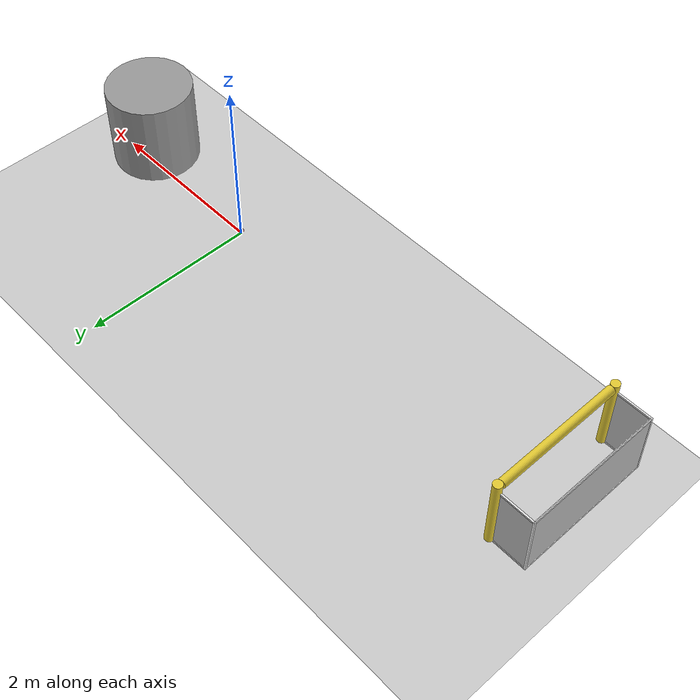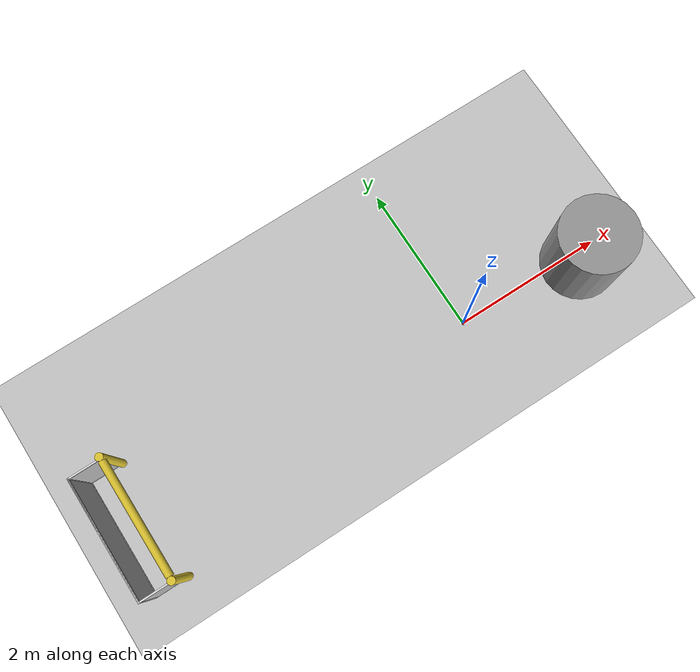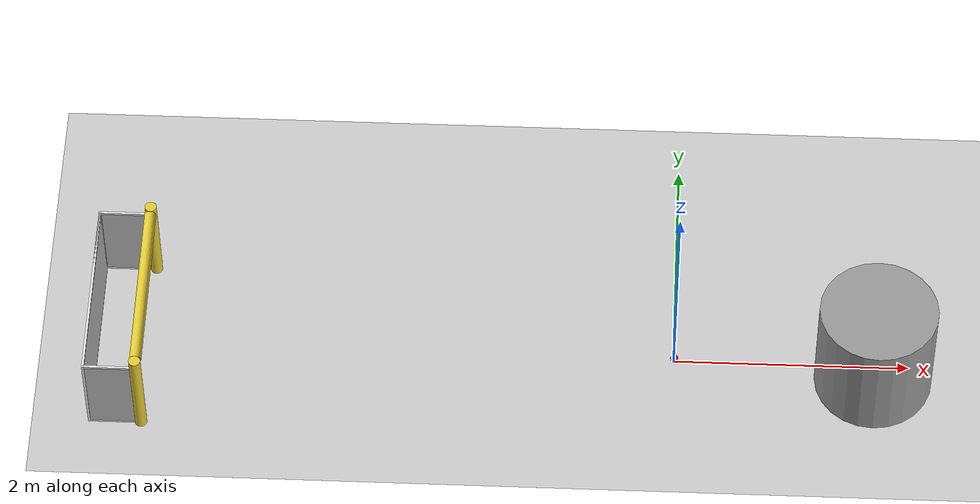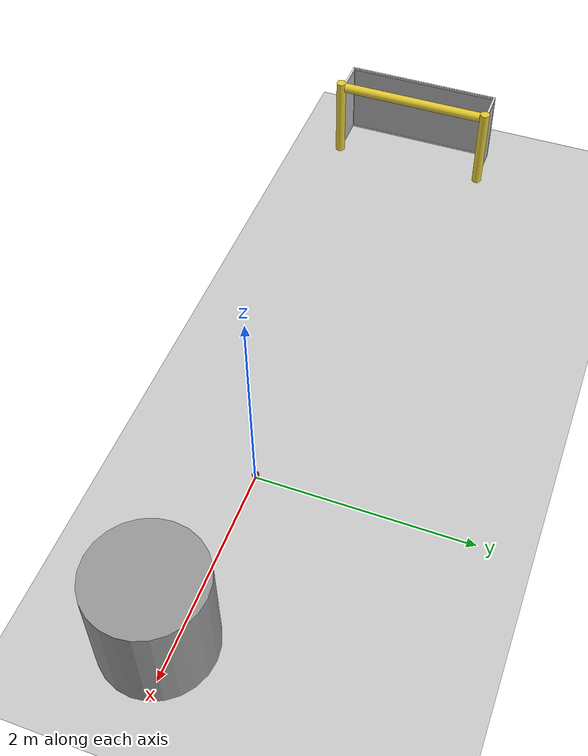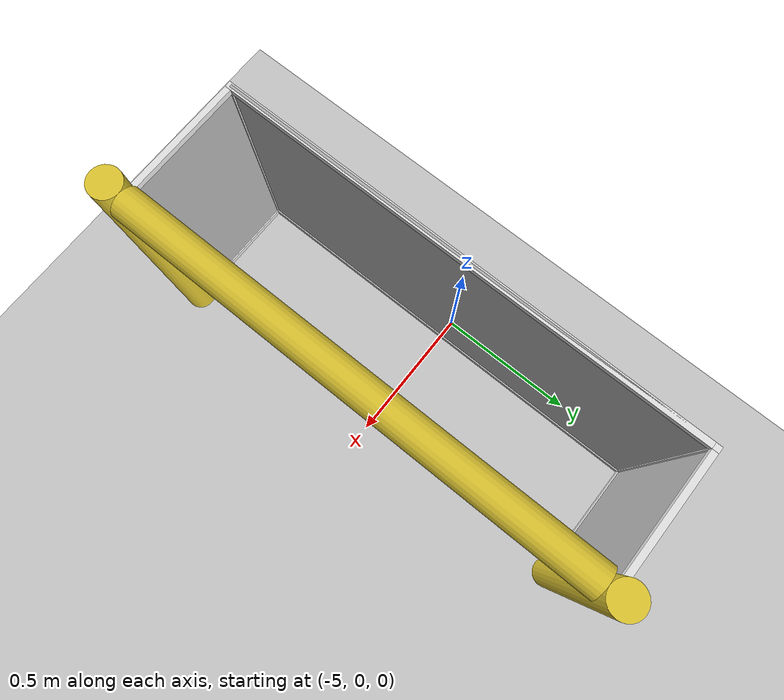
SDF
<sdf version="1.7">
 <world name="default">
  <light name="sun" type="directional">
   <pose>0 0 10 0 -0 0</pose>
   <diffuse>0.8 0.8 0.8 1</diffuse>
   <specular>0.2 0.2 0.2 1</specular>
   <attenuation>
    <range>1000</range>
    <constant>0.9</constant>
    <linear>0.01</linear>
    <quadratic>0.001</quadratic>
   </attenuation>
   <direction>-0.5 0.1 -0.9</direction>
   <spot><inner_angle>0</inner_angle><outer_angle>0</outer_angle><falloff>0</falloff></spot>
  </light>
  <model name="ground_plane">
   <static>1</static>
   <link name="link">
    <collision name="collision">
     <geometry><plane><normal>0 0 1</normal><size>100 100</size></plane></geometry>
     <surface>
      <contact><collide_bitmask>65535</collide_bitmask></contact>
      <friction><ode><mu>100</mu><mu2>50</mu2></ode></friction>
     </surface>
    </collision>
    <visual name="visual">
     <cast_shadows>0</cast_shadows>
     <geometry><plane><normal>0 0 1</normal><size>100 100</size></plane></geometry>
     <material>
      <script><uri>file://media/materials/scripts/gazebo.material</uri><name>Gazebo/Grey</name></script>
     </material>
    </visual>
   </link>
  </model>
  <model name="RoboCup 2014 SPL Goal">
   <static>1</static>
   <link name="left_post">
    <pose>0 0.8 0.45 0 -0 0</pose>
    <collision name="collision">
     <geometry><cylinder><radius>0.05</radius><length>0.9</length></cylinder></geometry>
    </collision>
    <visual name="visual">
     <geometry><cylinder><radius>0.05</radius><length>0.9</length></cylinder></geometry>
     <material>
      <script><uri>file://media/materials/scripts/gazebo.material</uri><name>Gazebo/ZincYellow</name></script>
     </material>
    </visual>
   </link>
   <link name="left_support_horiz_lower">
    <pose>0.24 0.8 0.01 0 -0 0</pose>
    <collision name="collision"><geometry><box><size>0.38 0.02 0.02</size></box></geometry></collision>
    <visual name="visual">
     <geometry><box><size>0.38 0.02 0.02</size></box></geometry>
     <material>
      <script><uri>file://media/materials/scripts/gazebo.material</uri><name>Gazebo/White</name></script>
     </material>
    </visual>
   </link>
   <link name="left_support_horiz_upper">
    <pose>0.24 0.8 0.79 0 -0 0</pose>
    <collision name="collision"><geometry><box><size>0.38 0.02 0.02</size></box></geometry></collision>
    <visual name="visual">
     <geometry><box><size>0.38 0.02 0.02</size></box></geometry>
     <material>
      <script><uri>file://media/materials/scripts/gazebo.material</uri><name>Gazebo/White</name></script>
     </material>
    </visual>
   </link>
   <link name="left_support_vertical">
    <pose>0.44 0.8 0.4 3.14159 1.57079 3.14159</pose>
    <collision name="collision"><geometry><box><size>0.8 0.02 0.02</size></box></geometry></collision>
    <visual name="visual">
     <geometry><box><size>0.8 0.02 0.02</size></box></geometry>
     <material>
      <script><uri>file://media/materials/scripts/gazebo.material</uri><name>Gazebo/White</name></script>
     </material>
    </visual>
   </link>
   <link name="right_support_horiz_lower">
    <pose>0.24 -0.8 0.01 0 -0 0</pose>
    <collision name="collision"><geometry><box><size>0.38 0.02 0.02</size></box></geometry></collision>
    <visual name="visual">
     <geometry><box><size>0.38 0.02 0.02</size></box></geometry>
     <material>
      <script><uri>file://media/materials/scripts/gazebo.material</uri><name>Gazebo/White</name></script>
     </material>
    </visual>
   </link>
   <link name="right_support_horiz_upper">
    <pose>0.24 -0.8 0.79 0 -0 0</pose>
    <collision name="collision"><geometry><box><size>0.38 0.02 0.02</size></box></geometry></collision>
    <visual name="visual">
     <geometry><box><size>0.38 0.02 0.02</size></box></geometry>
     <material>
      <script><uri>file://media/materials/scripts/gazebo.material</uri><name>Gazebo/White</name></script>
     </material>
    </visual>
   </link>
   <link name="right_support_vertical">
    <pose>0.44 -0.8 0.4 3.14159 1.57079 3.14159</pose>
    <collision name="collision"><geometry><box><size>0.8 0.02 0.02</size></box></geometry></collision>
    <visual name="visual">
     <geometry><box><size>0.8 0.02 0.02</size></box></geometry>
     <material>
      <script><uri>file://media/materials/scripts/gazebo.material</uri><name>Gazebo/White</name></script>
     </material>
    </visual>
   </link>
   <link name="center_support_horiz_lower">
    <pose>0.44 0 0.01 3.14159 1.57079 3.14159</pose>
    <collision name="collision"><geometry><box><size>0.02 1.58 0.02</size></box></geometry></collision>
    <visual name="visual">
     <geometry><box><size>0.02 1.58 0.02</size></box></geometry>
     <material>
      <script><uri>file://media/materials/scripts/gazebo.material</uri><name>Gazebo/White</name></script>
     </material>
    </visual>
   </link>
   <link name="center_support_horiz_upper">
    <pose>0.44 0 0.79 3.14159 1.57079 3.14159</pose>
    <collision name="collision"><geometry><box><size>0.02 1.58 0.02</size></box></geometry></collision>
    <visual name="visual">
     <geometry><box><size>0.02 1.58 0.02</size></box></geometry>
     <material>
      <script><uri>file://media/materials/scripts/gazebo.material</uri><name>Gazebo/White</name></script>
     </material>
    </visual>
   </link>
   <link name="right_post">
    <pose>0 -0.8 0.45 0 -0 0</pose>
    <collision name="collision">
     <geometry><cylinder><radius>0.05</radius><length>0.9</length></cylinder></geometry>
    </collision>
    <visual name="visual">
     <geometry><cylinder><radius>0.05</radius><length>0.9</length></cylinder></geometry>
     <material>
      <script><uri>file://media/materials/scripts/gazebo.material</uri><name>Gazebo/ZincYellow</name></script>
     </material>
    </visual>
   </link>
   <link name="crossbar">
    <pose>0 0 0.85 1.57 1.57 0</pose>
    <collision name="collision">
     <geometry><cylinder><radius>0.05</radius><length>1.5</length></cylinder></geometry>
    </collision>
    <visual name="visual">
     <geometry><cylinder><radius>0.05</radius><length>1.5</length></cylinder></geometry>
     <material>
      <script><uri>file://media/materials/scripts/gazebo.material</uri><name>Gazebo/ZincYellow</name></script>
     </material>
    </visual>
   </link>
   <link name="center_net">
    <pose>0.44 0 0.4 0 -0 0</pose>
    <collision name="collision"><geometry><box><size>0.01 1.6 0.8</size></box></geometry></collision>
    <visual name="visual">
     <geometry><box><size>0.01 1.6 0.8</size></box></geometry>
     <material>
      <script>
       <uri>model://robocup09_spl_field/materials/scripts/</uri>
       <uri>model://robocup09_spl_field/materials/textures/</uri>
       <name>RoboCup/Net</name>
      </script>
     </material>
    </visual>
   </link>
   <link name="left_net">
    <pose>0.24 0.8 0.4 0 -0 0</pose>
    <collision name="collision"><geometry><box><size>0.38 0.01 0.76</size></box></geometry></collision>
    <visual name="visual">
     <geometry><box><size>0.38 0.01 0.76</size></box></geometry>
     <material>
      <script>
       <uri>model://robocup09_spl_field/materials/scripts/</uri>
       <uri>model://robocup09_spl_field/materials/textures/</uri>
       <name>RoboCup/Net</name>
      </script>
     </material>
    </visual>
   </link>
   <link name="right_net">
    <pose>0.24 -0.8 0.4 0 -0 0</pose>
    <collision name="collision"><geometry><box><size>0.38 0.01 0.76</size></box></geometry></collision>
    <visual name="visual">
     <geometry><box><size>0.38 0.01 0.76</size></box></geometry>
     <material>
      <script>
       <uri>model://robocup09_spl_field/materials/scripts/</uri>
       <uri>model://robocup09_spl_field/materials/textures/</uri>
       <name>RoboCup/Net</name>
      </script>
     </material>
    </visual>
   </link>
   <pose>-4.5 0 0 0 -0 -3.14159</pose>
  </model>
  <model name="RoboCup 2014 SPL Goal">
   <static>1</static>
   <link name="left_post">
    <pose>0 0.8 0.45 0 -0 0</pose>
    <collision name="collision">
     <geometry><cylinder><radius>0.05</radius><length>0.9</length></cylinder></geometry>
    </collision>
    <visual name="visual">
     <geometry><cylinder><radius>0.05</radius><length>0.9</length></cylinder></geometry>
     <material>
      <script><uri>file://media/materials/scripts/gazebo.material</uri><name>Gazebo/ZincYellow</name></script>
     </material>
    </visual>
   </link>
   <link name="left_support_horiz_lower">
    <pose>0.24 0.8 0.01 0 -0 0</pose>
    <collision name="collision"><geometry><box><size>0.38 0.02 0.02</size></box></geometry></collision>
    <visual name="visual">
     <geometry><box><size>0.38 0.02 0.02</size></box></geometry>
     <material>
      <script><uri>file://media/materials/scripts/gazebo.material</uri><name>Gazebo/White</name></script>
     </material>
    </visual>
   </link>
   <link name="left_support_horiz_upper">
    <pose>0.24 0.8 0.79 0 -0 0</pose>
    <collision name="collision"><geometry><box><size>0.38 0.02 0.02</size></box></geometry></collision>
    <visual name="visual">
     <geometry><box><size>0.38 0.02 0.02</size></box></geometry>
     <material>
      <script><uri>file://media/materials/scripts/gazebo.material</uri><name>Gazebo/White</name></script>
     </material>
    </visual>
   </link>
   <link name="left_support_vertical">
    <pose>0.44 0.8 0.4 3.14159 1.57079 3.14159</pose>
    <collision name="collision"><geometry><box><size>0.8 0.02 0.02</size></box></geometry></collision>
    <visual name="visual">
     <geometry><box><size>0.8 0.02 0.02</size></box></geometry>
     <material>
      <script><uri>file://media/materials/scripts/gazebo.material</uri><name>Gazebo/White</name></script>
     </material>
    </visual>
   </link>
   <link name="right_support_horiz_lower">
    <pose>0.24 -0.8 0.01 0 -0 0</pose>
    <collision name="collision"><geometry><box><size>0.38 0.02 0.02</size></box></geometry></collision>
    <visual name="visual">
     <geometry><box><size>0.38 0.02 0.02</size></box></geometry>
     <material>
      <script><uri>file://media/materials/scripts/gazebo.material</uri><name>Gazebo/White</name></script>
     </material>
    </visual>
   </link>
   <link name="right_support_horiz_upper">
    <pose>0.24 -0.8 0.79 0 -0 0</pose>
    <collision name="collision"><geometry><box><size>0.38 0.02 0.02</size></box></geometry></collision>
    <visual name="visual">
     <geometry><box><size>0.38 0.02 0.02</size></box></geometry>
     <material>
      <script><uri>file://media/materials/scripts/gazebo.material</uri><name>Gazebo/White</name></script>
     </material>
    </visual>
   </link>
   <link name="right_support_vertical">
    <pose>0.44 -0.8 0.4 3.14159 1.57079 3.14159</pose>
    <collision name="collision"><geometry><box><size>0.8 0.02 0.02</size></box></geometry></collision>
    <visual name="visual">
     <geometry><box><size>0.8 0.02 0.02</size></box></geometry>
     <material>
      <script><uri>file://media/materials/scripts/gazebo.material</uri><name>Gazebo/White</name></script>
     </material>
    </visual>
   </link>
   <link name="center_support_horiz_lower">
    <pose>0.44 0 0.01 3.14159 1.57079 3.14159</pose>
    <collision name="collision"><geometry><box><size>0.02 1.58 0.02</size></box></geometry></collision>
    <visual name="visual">
     <geometry><box><size>0.02 1.58 0.02</size></box></geometry>
     <material>
      <script><uri>file://media/materials/scripts/gazebo.material</uri><name>Gazebo/White</name></script>
     </material>
    </visual>
   </link>
   <link name="center_support_horiz_upper">
    <pose>0.44 0 0.79 3.14159 1.57079 3.14159</pose>
    <collision name="collision"><geometry><box><size>0.02 1.58 0.02</size></box></geometry></collision>
    <visual name="visual">
     <geometry><box><size>0.02 1.58 0.02</size></box></geometry>
     <material>
      <script><uri>file://media/materials/scripts/gazebo.material</uri><name>Gazebo/White</name></script>
     </material>
    </visual>
   </link>
   <link name="right_post">
    <pose>0 -0.8 0.45 0 -0 0</pose>
    <collision name="collision">
     <geometry><cylinder><radius>0.05</radius><length>0.9</length></cylinder></geometry>
    </collision>
    <visual name="visual">
     <geometry><cylinder><radius>0.05</radius><length>0.9</length></cylinder></geometry>
     <material>
      <script><uri>file://media/materials/scripts/gazebo.material</uri><name>Gazebo/ZincYellow</name></script>
     </material>
    </visual>
   </link>
   <link name="crossbar">
    <pose>0 0 0.85 1.57 1.57 0</pose>
    <collision name="collision">
     <geometry><cylinder><radius>0.05</radius><length>1.5</length></cylinder></geometry>
    </collision>
    <visual name="visual">
     <geometry><cylinder><radius>0.05</radius><length>1.5</length></cylinder></geometry>
     <material>
      <script><uri>file://media/materials/scripts/gazebo.material</uri><name>Gazebo/ZincYellow</name></script>
     </material>
    </visual>
   </link>
   <link name="center_net">
    <pose>0.44 0 0.4 0 -0 0</pose>
    <collision name="collision"><geometry><box><size>0.01 1.6 0.8</size></box></geometry></collision>
    <visual name="visual">
     <geometry><box><size>0.01 1.6 0.8</size></box></geometry>
     <material>
      <script>
       <uri>model://robocup09_spl_field/materials/scripts/</uri>
       <uri>model://robocup09_spl_field/materials/textures/</uri>
       <name>RoboCup/Net</name>
      </script>
     </material>
    </visual>
   </link>
   <link name="left_net">
    <pose>0.24 0.8 0.4 0 -0 0</pose>
    <collision name="collision"><geometry><box><size>0.38 0.01 0.76</size></box></geometry></collision>
    <visual name="visual">
     <geometry><box><size>0.38 0.01 0.76</size></box></geometry>
     <material>
      <script>
       <uri>model://robocup09_spl_field/materials/scripts/</uri>
       <uri>model://robocup09_spl_field/materials/textures/</uri>
       <name>RoboCup/Net</name>
      </script>
     </material>
    </visual>
   </link>
   <link name="right_net">
    <pose>0.24 -0.8 0.4 0 -0 0</pose>
    <collision name="collision"><geometry><box><size>0.38 0.01 0.76</size></box></geometry></collision>
    <visual name="visual">
     <geometry><box><size>0.38 0.01 0.76</size></box></geometry>
     <material>
      <script>
       <uri>model://robocup09_spl_field/materials/scripts/</uri>
       <uri>model://robocup09_spl_field/materials/textures/</uri>
       <name>RoboCup/Net</name>
      </script>
     </material>
    </visual>
   </link>
   <pose>-4.5 0 0 0 -0 -3.14159</pose>
  </model>
  <model name="RoboCup SPL Ball">
   <static>0</static>
   <link name="ball">
    <inertial>
     <mass>0.0056</mass>
     <inertia>
      <ixx>2.37e-06</ixx>
      <iyy>2.37e-06</iyy>
      <izz>2.37e-06</izz>
      <ixy>0</ixy>
      <ixz>0</ixz>
      <iyz>0</iyz>
     </inertia>
    </inertial>
    <collision name="collision"><geometry><sphere><radius>0.0325</radius></sphere></geometry></collision>
    <visual name="visual">
     <geometry><sphere><radius>0.0325</radius></sphere></geometry>
     <material>
      <script><uri>file://media/materials/scripts/gazebo.material</uri><name>Gazebo/RedBright</name></script>
     </material>
    </visual>
   </link>
   <pose>0 0 0.0425 0 -0 0</pose>
  </model>
  <gravity>0 0 -9.8</gravity>
  <magnetic_field>6e-06 2.3e-05 -4.2e-05</magnetic_field>
  <atmosphere type="adiabatic"/>
  <physics type="ode">
   <max_step_size>0.001</max_step_size>
   <real_time_factor>1</real_time_factor>
   <real_time_update_rate>1000</real_time_update_rate>
  </physics>
  <scene><ambient>0.4 0.4 0.4 1</ambient><background>0.7 0.7 0.7 1</background><shadows>1</shadows></scene>
  <spherical_coordinates>
   <surface_model>EARTH_WGS84</surface_model>
   <latitude_deg>0</latitude_deg>
   <longitude_deg>0</longitude_deg>
   <elevation>0</elevation>
   <heading_deg>0</heading_deg>
  </spherical_coordinates>
  <model name="unit_cylinder">
   <pose>1.69258 -0.130418 0.509991 -0 -0 -0</pose>
   <link name="link">
    <inertial>
     <mass>1</mass>
     <inertia><ixx>0.145833</ixx><ixy>0</ixy><ixz>0</ixz><iyy>0.145833</iyy><iyz>0</iyz><izz>0.125</izz></inertia>
    </inertial>
    <collision name="collision">
     <geometry><cylinder><radius>0.5</radius><length>1</length></cylinder></geometry>
    </collision>
    <visual name="visual">
     <geometry><cylinder><radius>0.5</radius><length>1</length></cylinder></geometry>
     <material>
      <script><name>Gazebo/Grey</name><uri>file://media/materials/scripts/gazebo.material</uri></script>
     </material>
    </visual>
   </link>
  </model>
 </world>
</sdf>
